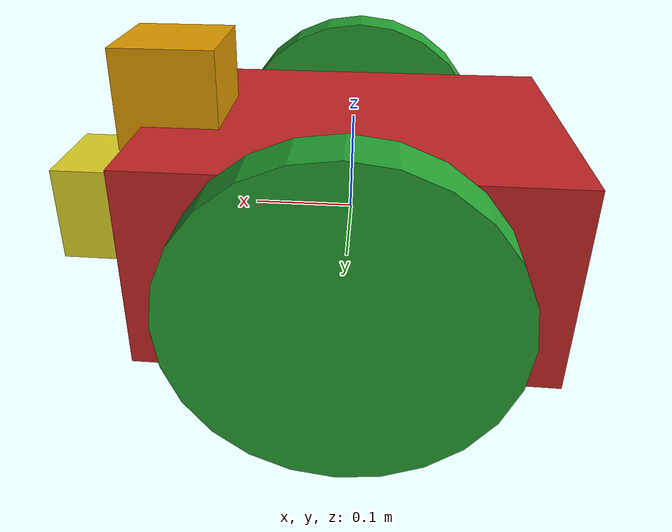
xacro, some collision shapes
<?xml version='1.0'?>

<robot name="my_new_robot" xmlns:xacro="http://www.ros.org/wiki/xacro">
  <xacro:include filename="$(find my_robot)/urdf/my_robot.gazebo"/>

  <link name="robot_footprint"></link>

  <joint name="robot_footprint_joint" type="fixed">
    <origin xyz="0 0 0" rpy="0 0 0" />
    <parent link="robot_footprint"/>
    <child link="chassis" />
  </joint>

  <link name='chassis'>
    <pose>0 0 0.1 0 0 0</pose>

    <inertial>
      <mass value="15.0"/>
      <origin xyz="0.0 0 0" rpy=" 0 0 0"/>
      <inertia
          ixx="0.1" ixy="0" ixz="0"
          iyy="0.1" iyz="0"
          izz="0.1"
      />
    </inertial>

    <collision name='collision'>
      <origin xyz="0 0 0" rpy=" 0 0 0"/>
      <geometry>
        <box size=".4 .3 .2"/>
      </geometry>
    </collision>

    <visual name='chassis_visual'>
      <origin xyz="0 0 0" rpy=" 0 0 0"/>
      <geometry>
        <box size=".4 .3 .2"/>
      </geometry>
    </visual>
  </link>

  <link name='front_caster'>
    <inertial>
      <mass value="0.001"/>
      <origin xyz="0.0 0 0" rpy=" 0 0 0"/>
      <inertia
          ixx="0.001" ixy="0" ixz="0"
          iyy="0.001" iyz="0"
          izz="0.001"
      />
    </inertial>

    <collision name='front_caster_collision'>
      <origin xyz="0 0 0" rpy="0 0 0" />
      <geometry>
        <sphere radius="0.05"/>
      </geometry>
    </collision>

    <visual name='front_caster_visual'>
      <origin xyz="0 0 0" rpy="0 0 0" />
      <geometry>
        <sphere radius="0.05"/>
      </geometry>
    </visual>
  </link>

  <joint name="front_caster_joint" type="continuous">
        <parent link="chassis" />
        <child link="front_caster" />
        <origin xyz="0.15 0 -0.1" />
        <axis xyz="1 1 1"/>
  </joint>

  <link name='back_caster'>
    <inertial>
      <mass value="0.001"/>
      <origin xyz="0.0 0 0" rpy=" 0 0 0"/>
      <inertia
          ixx="0.001" ixy="0" ixz="0"
          iyy="0.001" iyz="0"
          izz="0.001"
      />
    </inertial>

    <collision name='back_caster_collision'>
      <origin xyz="0 0 0" rpy="0 0 0" />
      <geometry>
        <sphere radius="0.05"/>
      </geometry>
    </collision>

    <visual name='back_caster_visual'>
      <origin xyz="0 0 0" rpy="0 0 0" />
      <geometry>
        <sphere radius="0.05"/>
      </geometry>
    </visual>
  </link>

  <joint name="back_caster_joint" type="continuous">
        <parent link="chassis" />
        <child link="back_caster" />
        <origin xyz="-0.15 0 -0.1" />
        <axis xyz="1 1 1"/>
  </joint>

  <link name="left_wheel">
    <inertial>
      <mass value="5.0"/>
      <origin xyz="0.0 0 0" rpy=" 0 1.5707 1.5707"/>
      <inertia
          ixx="0.1" ixy="0" ixz="0"
          iyy="0.1" iyz="0"
          izz="0.1"
      />
    </inertial>

    <collision name='left_wheel_collision'>
      <origin xyz="0.0 0 0" rpy=" 0 1.5707 1.5707"/>
      <geometry>
        <cylinder length="0.05" radius="0.15"/>
      </geometry>
    </collision>

    <visual name='left_wheel_visual'>
      <origin xyz="0.0 0 0" rpy=" 0 1.5707 1.5707"/>
      <geometry>
        <cylinder length="0.05" radius="0.15"/>
      </geometry>
    </visual>

  </link>

  <link name="right_wheel">
    <inertial>
      <mass value="5.0"/>
      <origin xyz="0.0 0 0" rpy=" 0 1.5707 1.5707"/>
      <inertia
          ixx="0.1" ixy="0" ixz="0"
          iyy="0.1" iyz="0"
          izz="0.1"
      />
    </inertial>

    <collision name='right_wheel_collision'>
      <origin xyz="0.0 0 0" rpy=" 0 1.5707 1.5707"/>
      <geometry>
        <cylinder length="0.05" radius="0.15"/>
      </geometry>
    </collision>

    <visual name='right_wheel_visual'>
      <origin xyz="0.0 0 0" rpy=" 0 1.5707 1.5707"/>
      <geometry>
        <cylinder length="0.05" radius="0.15"/>
      </geometry>
    </visual>
  </link>

  <joint type="continuous" name="left_wheel_hinge">
    <origin xyz="0.0 0.2 0" rpy="0 0 0"/>
    <child link="left_wheel"/>
    <parent link="chassis"/>
    <axis xyz="0 1 0" rpy="0 0 0"/>
    <limit effort="10000" velocity="1000"/>
    <dynamics damping="1.0" friction="1.0"/>
  </joint>

  <joint type="continuous" name="right_wheel_hinge">
    <origin xyz="0.0 -0.2 0" rpy="0 0 0"/>
    <child link="right_wheel"/>
    <parent link="chassis"/>
    <axis xyz="0 1 0" rpy="0 0 0"/>
    <limit effort="10000" velocity="1000"/>
    <dynamics damping="1.0" friction="1.0"/>
  </joint>

  <link name="camera">
    <inertial>
      <mass value="0.1"/>
      <origin xyz="0.0 0 0" rpy=" 0 0 0"/>
      <inertia
          ixx="1e-6" ixy="0" ixz="0"
          iyy="1e-6" iyz="0"
          izz="1e-6"
      />
    </inertial>

    <collision name='camera_collision'>
      <origin xyz="0.0 0 0" rpy=" 0 0 0"/>
      <geometry>
        <box size="0.1 0.1 0.1"/>
      </geometry>
    </collision>

    <visual name='camera_visual'>
      <origin xyz="0.0 0 0" rpy=" 0 0 0"/>
      <geometry>
        <box size="0.1 0.1 0.1"/>
      </geometry>
    </visual>
  </link>

  <joint type="fixed" name="camera_joint">
    <origin xyz="0.25 0 0" rpy="0 0 0"/>
    <child link="camera"/>
    <parent link="chassis"/>
    <axis xyz="0 1 0" rpy="0 0 0"/>
  </joint>

  <link name="camera_link_optical">
  </link>

  <joint name="camera_optical_joint" type="fixed">
    <origin xyz="0 0 0" rpy="-1.5707 0 -1.5707"/>
    <parent link="camera"/>
    <child link="camera_link_optical"/>
  </joint>

  <link name="hokuyo">
    <inertial>
      <mass value="1e-5"/>
      <origin xyz="0.0 0 0" rpy=" 0 0 0"/>
      <inertia
          ixx="1e-6" ixy="0" ixz="0"
          iyy="1e-6" iyz="0"
          izz="1e-6"
      />
    </inertial>

    <collision name='hokuyo_collision'>
      <origin xyz="0.0 0 0" rpy=" 0 0 0"/>
      <geometry>
        <box size="0.1 0.1 0.1"/>
      </geometry>
    </collision>

    <visual name='hokuyo_visual'>
      <origin xyz="0.0 0 0" rpy=" 0 0 0"/>
      <geometry>
        <mesh filename="package://my_robot/meshes/hokuyo.dae"/>
      </geometry>
    </visual>
  </link>

  <joint type="fixed" name="hokuyo_joint">
    <origin xyz="0.175 0 0.125" rpy="0 0 0"/>
    <child link="hokuyo"/>
    <parent link="chassis"/>
    <axis xyz="0 1 0" rpy="0 0 0"/>
  </joint>

  <gazebo reference="left_wheel">
    <material>Gazebo/Green</material>
  </gazebo>

  <gazebo reference="right_wheel">
    <material>Gazebo/Green</material>
  </gazebo>

  <gazebo reference="chassis">
    <material>Gazebo/Red</material>
  </gazebo>

  <gazebo reference="camera">
    <material>Gazebo/Yellow</material>
  </gazebo>

</robot>
